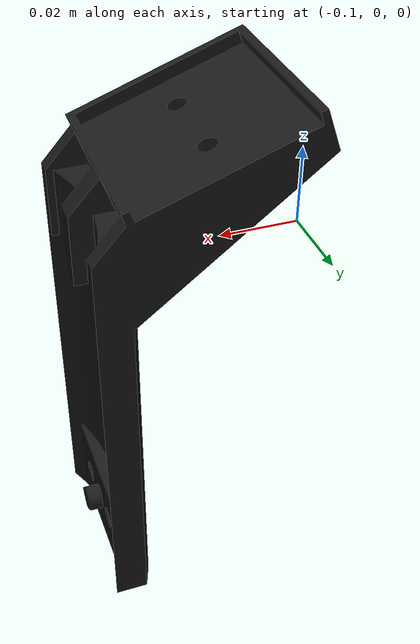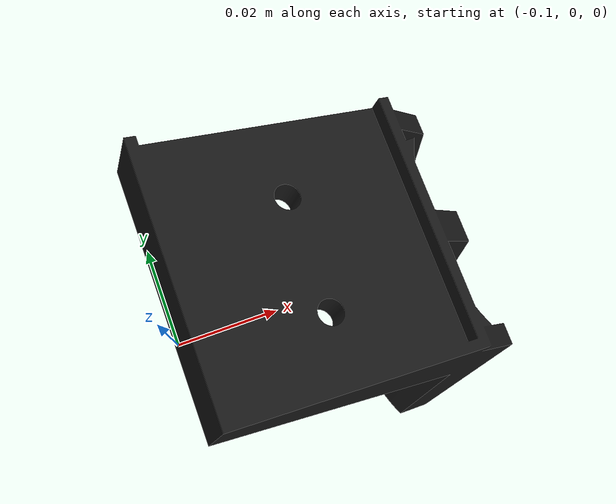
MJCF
<mujoco model="rizon_d405_wrist_mount">
  <compiler angle="radian" meshdir="assets" autolimits="true"/>

  <option cone="elliptic" impratio="10"/>

  <asset>
    <material name="black" rgba="0.1 0.1 0.1 1"/>

    <mesh name="rizon_d405_wrist_mount" file="rizon_d405_wrist_mount.stl" scale="0.001 0.001 0.001"/>
    <mesh name="rizon_d405_wrist_mount_collision" file="rizon_d405_wrist_mount_collision.stl" scale="0.001 0.001 0.001"/>
  </asset>

  <default>
    <default class="rizon_d405_wrist_mount">
      <default class="visual">
        <geom type="mesh" contype="0" conaffinity="0" group="2" material="black" density="1250"/>
      </default>
      <default class="collision">
        <geom type="mesh" group="3" density="0"/>
      </default>
    </default>
  </default>

  <worldbody>
    <body name="base" childclass="rizon_d405_wrist_mount">
      <geom mesh="rizon_d405_wrist_mount" class="visual"/>
      <geom mesh="rizon_d405_wrist_mount_collision" class="collision"/>
    </body>
  </worldbody>

</mujoco>
